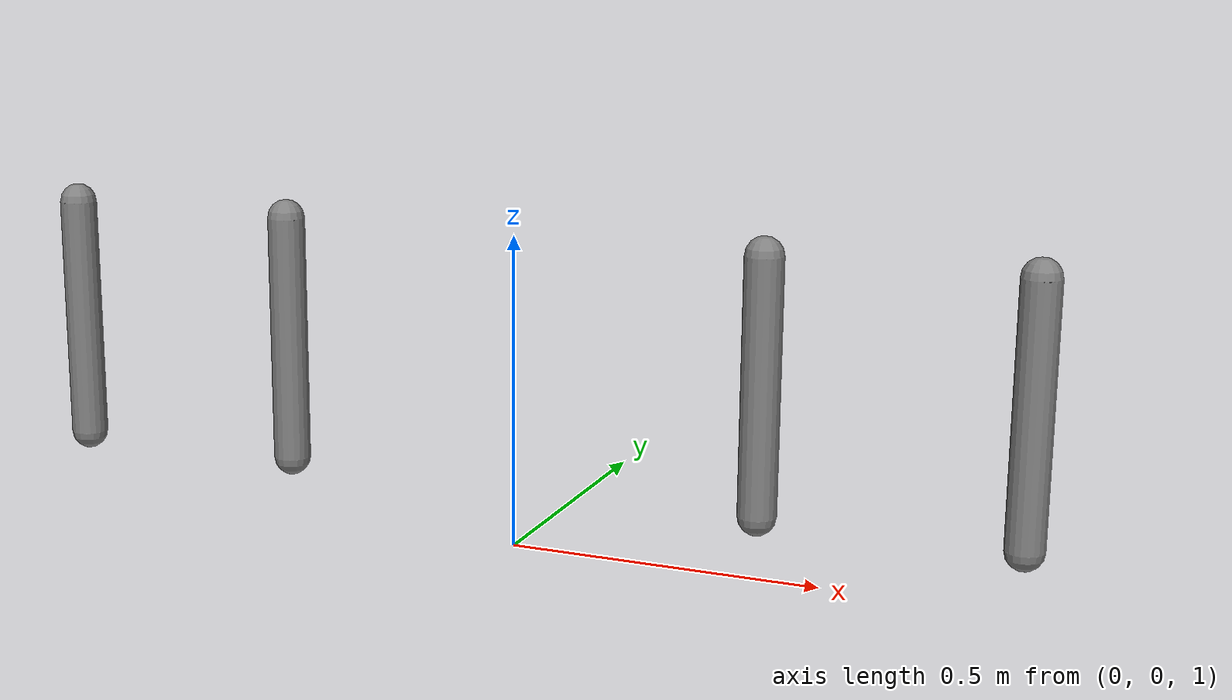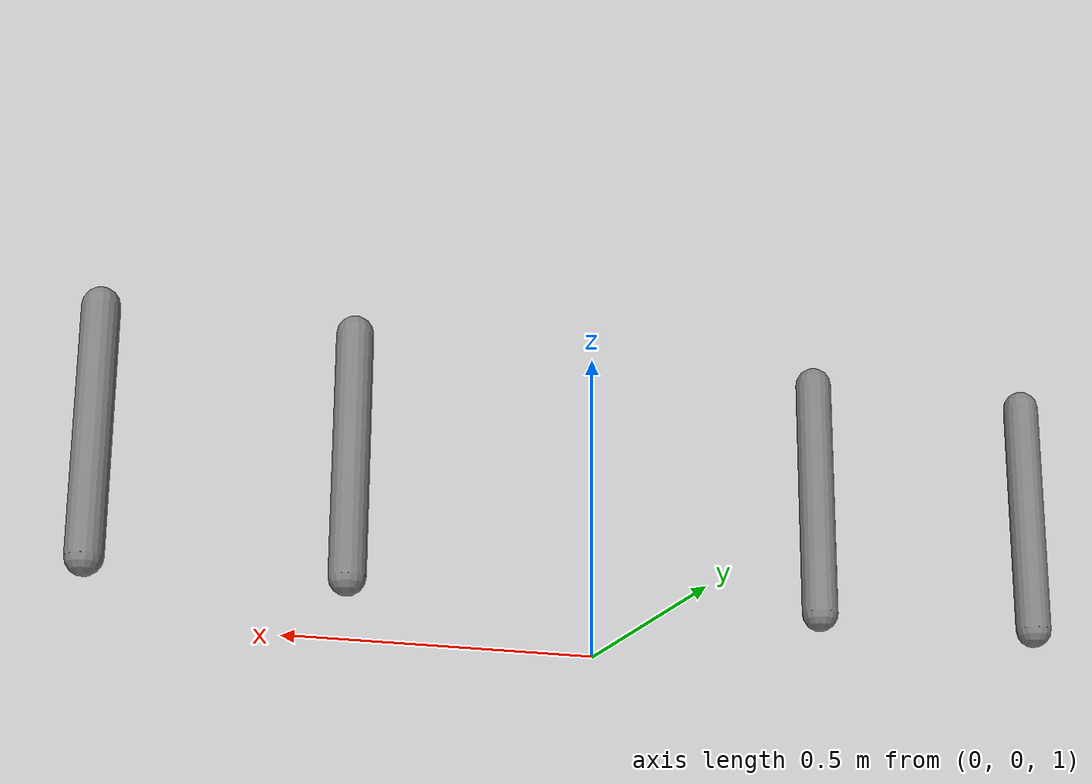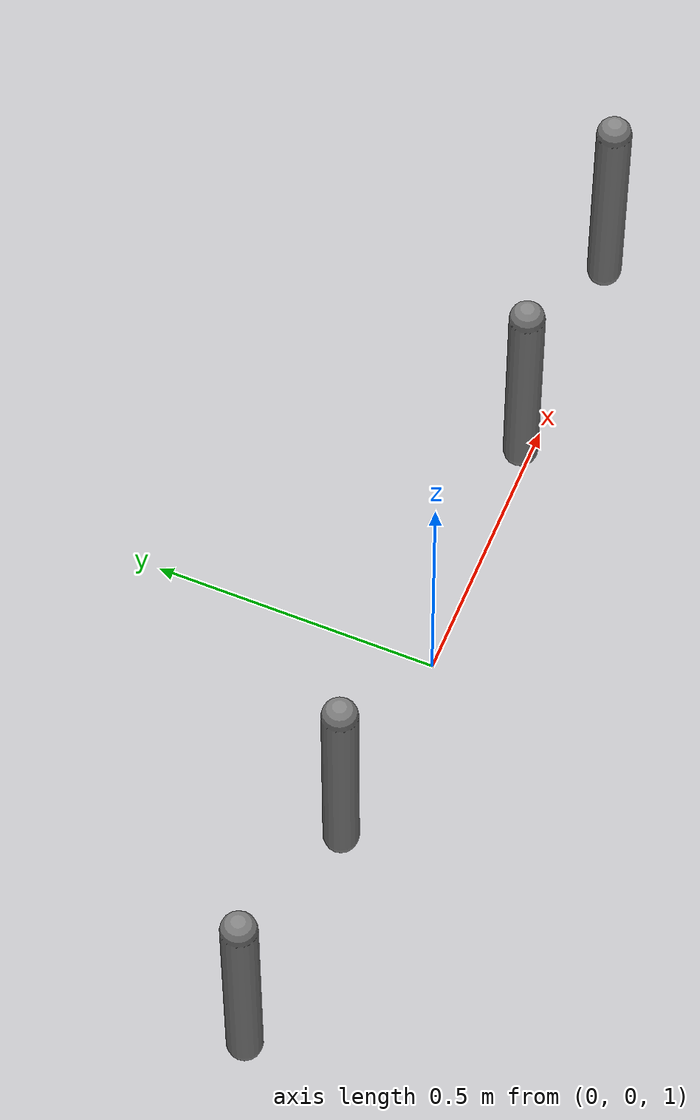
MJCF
<mujoco model="joint-coupling-stress-test">
          <compiler angle="radian"/>
          <option gravity="0 0 -9.81" timestep="0.001">
            <flag energy="enable"/>
          </option>
          <worldbody>
            <!-- Mimic pair -->
            <body name="arm_a1" pos="-0.8 0 1.5">
              <joint name="j_a1" type="hinge" axis="0 1 0" damping="0.5"/>
              <geom name="arm_a1" type="capsule" fromto="0 0 0 0 0 -0.4" size="0.03" mass="0.5"/>
            </body>
            <body name="arm_a2" pos="-0.4 0 1.5">
              <joint name="j_a2" type="hinge" axis="0 1 0" damping="0.5"/>
              <geom name="arm_a2" type="capsule" fromto="0 0 0 0 0 -0.4" size="0.03" mass="0.5"/>
            </body>

            <!-- Gear pair — motor drives j_b1, j_b2 follows at 2x -->
            <body name="arm_b1" pos="0.4 0 1.5">
              <joint name="j_b1" type="hinge" axis="0 1 0" damping="0.5"/>
              <geom name="arm_b1" type="capsule" fromto="0 0 0 0 0 -0.4" size="0.03" mass="0.5"/>
            </body>
            <body name="arm_b2" pos="0.8 0 1.5">
              <joint name="j_b2" type="hinge" axis="0 1 0" damping="0.5"/>
              <geom name="arm_b2" type="capsule" fromto="0 0 0 0 0 -0.4" size="0.03" mass="0.5"/>
            </body>
          </worldbody>

          <actuator>
            <motor name="drive" joint="j_b1" gear="1"/>
          </actuator>

          <equality>
            <!-- Mimic: j_a1 = j_a2 (1:1) -->
            <joint joint1="j_a1" joint2="j_a2" polycoef="0 1" solref="0.05 1.0"/>
            <!-- Gear: j_b2 = 2*j_b1 (joint1=j_b2, joint2=j_b1, so j_b2 = poly(j_b1) = 2*j_b1) -->
            <joint joint1="j_b2" joint2="j_b1" polycoef="0 2" solref="0.05 1.0"/>
          </equality>
        </mujoco>
